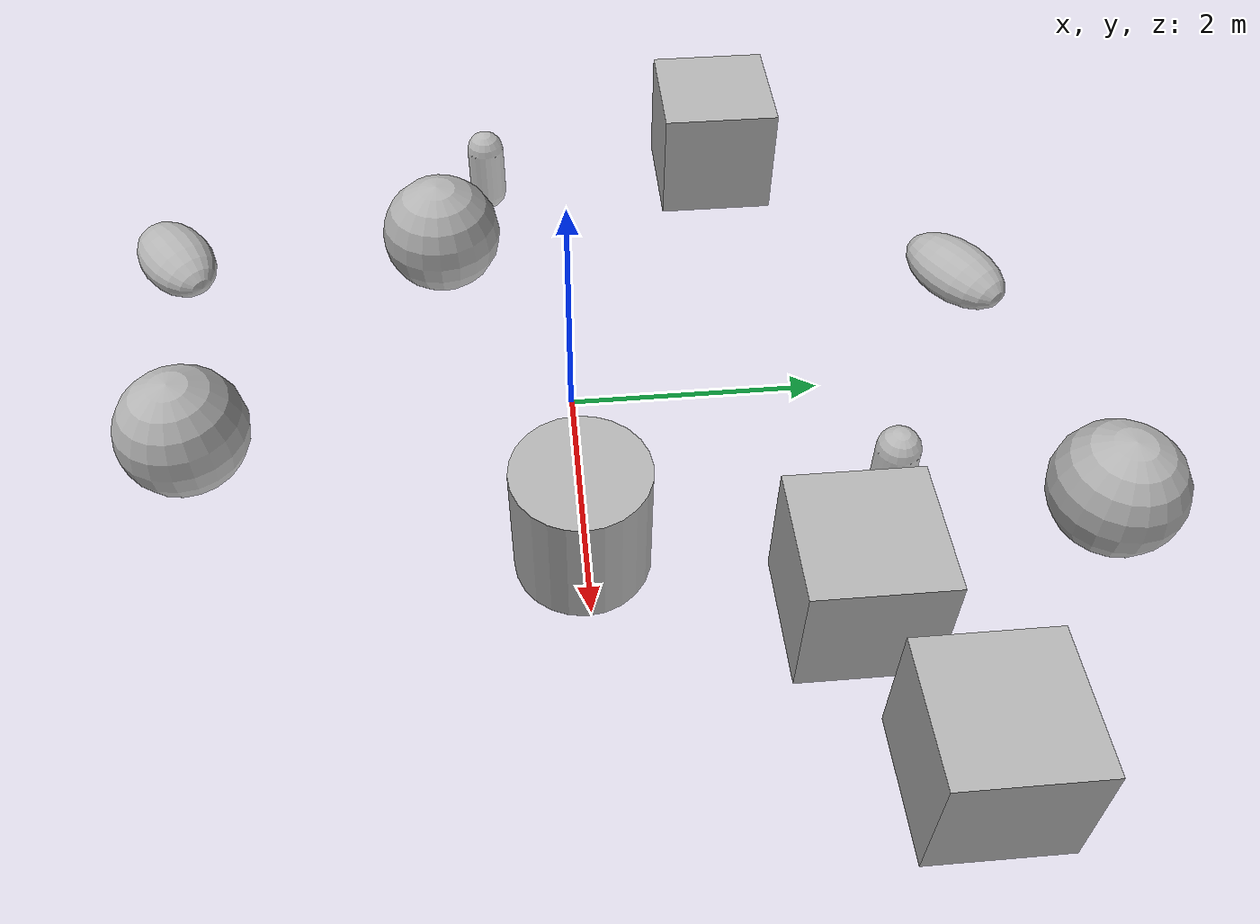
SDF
<sdf version="1.9">
 <world name="empty">
  <physics name="1ms" type="ignored">
   <max_step_size>0.001</max_step_size>
   <real_time_factor>1</real_time_factor>
   <real_time_update_rate>1000</real_time_update_rate>
  </physics>
  <plugin name="gz::sim::systems::Physics" filename="ignition-gazebo-physics-system"/>
  <plugin name="gz::sim::systems::UserCommands" filename="ignition-gazebo-user-commands-system"/>
  <plugin name="gz::sim::systems::SceneBroadcaster" filename="ignition-gazebo-scene-broadcaster-system"/>
  <plugin name="gz::sim::systems::Contact" filename="ignition-gazebo-contact-system"/>
  <gravity>0 0 -9.8</gravity>
  <magnetic_field>6e-06 2.3e-05 -4.2e-05</magnetic_field>
  <atmosphere type="adiabatic"/>
  <scene><ambient>0.4 0.4 0.4 1</ambient><background>0.7 0.7 0.7 1</background><shadows>true</shadows></scene>
  <model name="ground_plane">
   <static>true</static>
   <link name="link">
    <collision name="collision">
     <geometry><plane><normal>0 0 1</normal><size>100 100</size></plane></geometry>
    </collision>
    <visual name="visual">
     <geometry><plane><normal>0 0 1</normal><size>100 100</size></plane></geometry>
     <material>
      <ambient>0.8 0.8 0.8 1</ambient>
      <diffuse>0.8 0.8 0.8 1</diffuse>
      <specular>0.8 0.8 0.8 1</specular>
     </material>
    </visual>
    <inertial>
     <mass>1</mass>
     <inertia><ixx>1</ixx><ixy>0</ixy><ixz>0</ixz><iyy>1</iyy><iyz>0</iyz><izz>1</izz></inertia>
    </inertial>
   </link>
  </model>
  <model name="cylinder">
   <pose>1.53452 -0.026335 0.499999 0 -0 0</pose>
   <link name="cylinder_link">
    <inertial>
     <inertia>
      <ixx>0.14580000000000001</ixx>
      <ixy>0</ixy>
      <ixz>0</ixz>
      <iyy>0.14580000000000001</iyy>
      <iyz>0</iyz>
      <izz>0.125</izz>
     </inertia>
     <mass>1</mass>
    </inertial>
    <collision name="cylinder_collision">
     <geometry><cylinder><radius>0.5</radius><length>1</length></cylinder></geometry>
    </collision>
    <visual name="cylinder_visual">
     <geometry><cylinder><radius>0.5</radius><length>1</length></cylinder></geometry>
     <material>
      <ambient>0.3 0.3 0.3 1</ambient>
      <diffuse>0.7 0.7 0.7 1</diffuse>
      <specular>1 1 1 1</specular>
     </material>
    </visual>
   </link>
   <static>false</static>
  </model>
  <model name="sphere">
   <pose>0.486349 -2.93784 0.5 0 -0 0</pose>
   <link name="sphere_link">
    <inertial>
     <inertia>
      <ixx>0.10000000000000001</ixx>
      <ixy>0</ixy>
      <ixz>0</ixz>
      <iyy>0.10000000000000001</iyy>
      <iyz>0</iyz>
      <izz>0.10000000000000001</izz>
     </inertia>
     <mass>1</mass>
    </inertial>
    <collision name="sphere_collision"><geometry><sphere><radius>0.5</radius></sphere></geometry></collision>
    <visual name="sphere_visual">
     <geometry><sphere><radius>0.5</radius></sphere></geometry>
     <material>
      <ambient>0.3 0.3 0.3 1</ambient>
      <diffuse>0.7 0.7 0.7 1</diffuse>
      <specular>1 1 1 1</specular>
     </material>
    </visual>
   </link>
   <static>false</static>
  </model>
  <model name="capsule">
   <pose>-0.012213 2.84843 -1.19016 2e-06 5e-05 0.057716</pose>
   <link name="capsule_link">
    <inertial>
     <inertia>
      <ixx>0.074153999999999998</ixx>
      <ixy>0</ixy>
      <ixz>0</ixz>
      <iyy>0.074153999999999998</iyy>
      <iyz>0</iyz>
      <izz>0.018769000000000001</izz>
     </inertia>
     <mass>1</mass>
    </inertial>
    <collision name="capsule_collision">
     <geometry>
      <capsule><radius>0.20000000000000001</radius><length>0.59999999999999998</length></capsule>
     </geometry>
    </collision>
    <visual name="capsule_visual">
     <geometry>
      <capsule><radius>0.20000000000000001</radius><length>0.59999999999999998</length></capsule>
     </geometry>
     <material>
      <ambient>0.3 0.3 0.3 1</ambient>
      <diffuse>0.7 0.7 0.7 1</diffuse>
      <specular>1 1 1 1</specular>
     </material>
    </visual>
   </link>
   <static>false</static>
  </model>
  <model name="box">
   <pose>-2.81967 1.50699 0.5 0 -0 0</pose>
   <link name="box_link">
    <inertial>
     <inertia><ixx>0.16666</ixx><ixy>0</ixy><ixz>0</ixz><iyy>0.16666</iyy><iyz>0</iyz><izz>0.16666</izz></inertia>
     <mass>1</mass>
    </inertial>
    <collision name="box_collision"><geometry><box><size>1 1 1</size></box></geometry></collision>
    <visual name="box_visual">
     <geometry><box><size>1 1 1</size></box></geometry>
     <material>
      <ambient>0.3 0.3 0.3 1</ambient>
      <diffuse>0.7 0.7 0.7 1</diffuse>
      <specular>1 1 1 1</specular>
     </material>
    </visual>
   </link>
   <static>false</static>
  </model>
  <model name="sphere_0">
   <pose>-1.60048 -1.00953 0.5 0 -0 0</pose>
   <link name="sphere_link">
    <inertial>
     <inertia>
      <ixx>0.10000000000000001</ixx>
      <ixy>0</ixy>
      <ixz>0</ixz>
      <iyy>0.10000000000000001</iyy>
      <iyz>0</iyz>
      <izz>0.10000000000000001</izz>
     </inertia>
     <mass>1</mass>
    </inertial>
    <collision name="sphere_collision"><geometry><sphere><radius>0.5</radius></sphere></geometry></collision>
    <visual name="sphere_visual">
     <geometry><sphere><radius>0.5</radius></sphere></geometry>
     <material>
      <ambient>0.3 0.3 0.3 1</ambient>
      <diffuse>0.7 0.7 0.7 1</diffuse>
      <specular>1 1 1 1</specular>
     </material>
    </visual>
   </link>
   <static>false</static>
  </model>
  <model name="box_0">
   <pose>3.49724 2.35981 0.5 0 -0 0</pose>
   <link name="box_link">
    <inertial>
     <inertia><ixx>0.16666</ixx><ixy>0</ixy><ixz>0</ixz><iyy>0.16666</iyy><iyz>0</iyz><izz>0.16666</izz></inertia>
     <mass>1</mass>
    </inertial>
    <collision name="box_collision"><geometry><box><size>1 1 1</size></box></geometry></collision>
    <visual name="box_visual">
     <geometry><box><size>1 1 1</size></box></geometry>
     <material>
      <ambient>0.3 0.3 0.3 1</ambient>
      <diffuse>0.7 0.7 0.7 1</diffuse>
      <specular>1 1 1 1</specular>
     </material>
    </visual>
   </link>
   <static>false</static>
  </model>
  <model name="box_1">
   <pose>2.18896 1.81806 0.5 0 -0 0</pose>
   <link name="box_link">
    <inertial>
     <inertia><ixx>0.16666</ixx><ixy>0</ixy><ixz>0</ixz><iyy>0.16666</iyy><iyz>0</iyz><izz>0.16666</izz></inertia>
     <mass>1</mass>
    </inertial>
    <collision name="box_collision"><geometry><box><size>1 1 1</size></box></geometry></collision>
    <visual name="box_visual">
     <geometry><box><size>1 1 1</size></box></geometry>
     <material>
      <ambient>0.3 0.3 0.3 1</ambient>
      <diffuse>0.7 0.7 0.7 1</diffuse>
      <specular>1 1 1 1</specular>
     </material>
    </visual>
   </link>
   <static>false</static>
  </model>
  <model name="ellipsoid">
   <pose>-1.08648 3.42524 0.186668 1.5708 -1.37749 -0.992746</pose>
   <link name="ellipsoid_link">
    <inertial>
     <inertia>
      <ixx>0.068000000000000005</ixx>
      <ixy>0</ixy>
      <ixz>0</ixz>
      <iyy>0.058000000000000003</iyy>
      <iyz>0</iyz>
      <izz>0.025999999999999999</izz>
     </inertia>
     <mass>1</mass>
    </inertial>
    <collision name="ellipsoid_collision">
     <geometry><ellipsoid><radii>0.2 0.3 0.5</radii></ellipsoid></geometry>
    </collision>
    <visual name="ellipsoid_visual">
     <geometry><ellipsoid><radii>0.2 0.3 0.5</radii></ellipsoid></geometry>
     <material>
      <ambient>0.3 0.3 0.3 1</ambient>
      <diffuse>0.7 0.7 0.7 1</diffuse>
      <specular>1 1 1 1</specular>
     </material>
    </visual>
   </link>
   <static>false</static>
  </model>
  <model name="sphere_1">
   <pose>1.60939 3.82272 0.5 0 -0 0</pose>
   <link name="sphere_link">
    <inertial>
     <inertia>
      <ixx>0.10000000000000001</ixx>
      <ixy>0</ixy>
      <ixz>0</ixz>
      <iyy>0.10000000000000001</iyy>
      <iyz>0</iyz>
      <izz>0.10000000000000001</izz>
     </inertia>
     <mass>1</mass>
    </inertial>
    <collision name="sphere_collision"><geometry><sphere><radius>0.5</radius></sphere></geometry></collision>
    <visual name="sphere_visual">
     <geometry><sphere><radius>0.5</radius></sphere></geometry>
     <material>
      <ambient>0.3 0.3 0.3 1</ambient>
      <diffuse>0.7 0.7 0.7 1</diffuse>
      <specular>1 1 1 1</specular>
     </material>
    </visual>
   </link>
   <static>false</static>
  </model>
  <model name="ellipsoid_0">
   <pose>-1.81765 -3.36624 0.186668 1.5708 -1.37749 -0.971423</pose>
   <link name="ellipsoid_link">
    <inertial>
     <inertia>
      <ixx>0.068000000000000005</ixx>
      <ixy>0</ixy>
      <ixz>0</ixz>
      <iyy>0.058000000000000003</iyy>
      <iyz>0</iyz>
      <izz>0.025999999999999999</izz>
     </inertia>
     <mass>1</mass>
    </inertial>
    <collision name="ellipsoid_collision">
     <geometry><ellipsoid><radii>0.2 0.3 0.5</radii></ellipsoid></geometry>
    </collision>
    <visual name="ellipsoid_visual">
     <geometry><ellipsoid><radii>0.2 0.3 0.5</radii></ellipsoid></geometry>
     <material>
      <ambient>0.3 0.3 0.3 1</ambient>
      <diffuse>0.7 0.7 0.7 1</diffuse>
      <specular>1 1 1 1</specular>
     </material>
    </visual>
   </link>
   <static>false</static>
  </model>
  <model name="capsule_0">
   <pose>-5.02329 -0.675775 -1.5063 -0 -1e-06 0</pose>
   <link name="capsule_link">
    <inertial>
     <inertia>
      <ixx>0.074153999999999998</ixx>
      <ixy>0</ixy>
      <ixz>0</ixz>
      <iyy>0.074153999999999998</iyy>
      <iyz>0</iyz>
      <izz>0.018769000000000001</izz>
     </inertia>
     <mass>1</mass>
    </inertial>
    <collision name="capsule_collision">
     <geometry>
      <capsule><radius>0.20000000000000001</radius><length>0.59999999999999998</length></capsule>
     </geometry>
    </collision>
    <visual name="capsule_visual">
     <geometry>
      <capsule><radius>0.20000000000000001</radius><length>0.59999999999999998</length></capsule>
     </geometry>
     <material>
      <ambient>0.3 0.3 0.3 1</ambient>
      <diffuse>0.7 0.7 0.7 1</diffuse>
      <specular>1 1 1 1</specular>
     </material>
    </visual>
   </link>
   <static>false</static>
  </model>
  <light name="sun" type="directional">
   <pose>0 0 10 0 -0 0</pose>
   <intensity>1</intensity>
   <direction>-0.5 0.1 -0.9</direction>
   <diffuse>0.8 0.8 0.8 1</diffuse>
   <specular>0.2 0.2 0.2 1</specular>
   <attenuation>
    <range>1000</range>
    <linear>0.01</linear>
    <constant>0.90000000000000002</constant>
    <quadratic>0.001</quadratic>
   </attenuation>
   <spot><inner_angle>0</inner_angle><outer_angle>0</outer_angle><falloff>0</falloff></spot>
  </light>
 </world>
</sdf>
